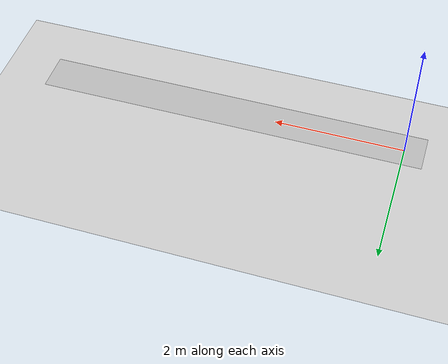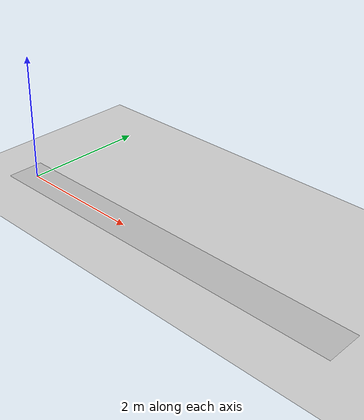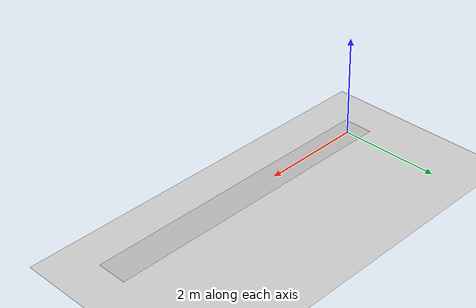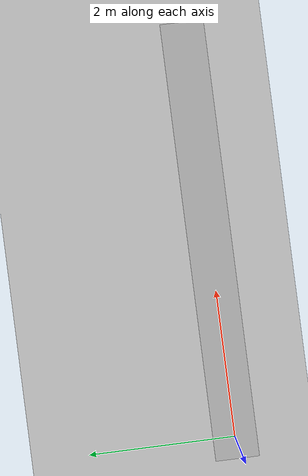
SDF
<sdf version='1.9'>
  <world name='straight_lane'>
    <physics name='1ms' type='ignored'>
      <max_step_size>0.001</max_step_size>
      <real_time_factor>1</real_time_factor>
      <real_time_update_rate>1000</real_time_update_rate>
      <dart>
        <collision_detector>bullet</collision_detector> <!-- this is required to solve https://github.com/gazebosim/gz-sim/issues/880 -->
      </dart>
    </physics>
    <plugin name='gz::sim::systems::Physics' filename='gz-sim-physics-system'/>
    <plugin name='gz::sim::systems::UserCommands' filename='gz-sim-user-commands-system'/>
    <plugin name='gz::sim::systems::SceneBroadcaster' filename='gz-sim-scene-broadcaster-system'/>
    <plugin name='gz::sim::systems::Contact' filename='gz-sim-contact-system'/>
    <gravity>0 0 -9.8</gravity>
    <magnetic_field>6e-06 2.3e-05 -4.2e-05</magnetic_field>
    <atmosphere type='adiabatic'/>
    <scene>
      <ambient>0.4 0.4 0.4 1</ambient>
      <background>0.7 0.7 0.7 1</background>
      <shadows>true</shadows>
      <sky>
        <time>12</time>
        <sunrise>6</sunrise>
        <sunset>18</sunset>
      </sky>
    </scene>
    <model name='ground_plane'>
      <static>true</static>
      <link name='link'>
        <collision name='collision'>
          <geometry>
            <plane>
              <normal>0 0 1</normal>
              <size>100 100</size>
            </plane>
          </geometry>
          <surface>
            <friction>
              <ode/>
            </friction>
            <bounce/>
            <contact/>
          </surface>
        </collision>
        <visual name='visual'>
          <geometry>
            <plane>
              <normal>0 0 1</normal>
              <size>100 100</size>
            </plane>
          </geometry>
          <material>
            <ambient>0.8 0.8 0.8 1</ambient>
            <diffuse>0.8 0.8 0.8 1</diffuse>
            <specular>0.8 0.8 0.8 1</specular>
          </material>
        </visual>
        <pose>0 0 0 0 -0 0</pose>
        <inertial>
          <pose>0 0 0 0 -0 0</pose>
          <mass>1</mass>
          <inertia>
            <ixx>1</ixx>
            <ixy>0</ixy>
            <ixz>0</ixz>
            <iyy>1</iyy>
            <iyz>0</iyz>
            <izz>1</izz>
          </inertia>
        </inertial>
        <enable_wind>false</enable_wind>
      </link>
      <pose>0 0 0 0 -0 0</pose>
      <self_collide>false</self_collide>
    </model>

    <include>
      <name>straight_lane</name>
      <uri>
        package://foxy_gz/assets/straight_lane/straight_lane.sdf
      </uri>
      <pose>2.7 0 0.018 0 0 0</pose>
    </include>

    <light name='sun' type='directional'>
      <pose>0 0 10 0 -0 0</pose>
      <cast_shadows>true</cast_shadows>
      <intensity>1</intensity>
      <direction>-0.5 0.1 -0.9</direction>
      <diffuse>0.8 0.8 0.8 1</diffuse>
      <specular>0.2 0.2 0.2 1</specular>
      <attenuation>
        <range>1000</range>
        <linear>0.01</linear>
        <constant>0.90000000000000002</constant>
        <quadratic>0.001</quadratic>
      </attenuation>
      <spot>
        <inner_angle>0</inner_angle>
        <outer_angle>0</outer_angle>
        <falloff>0</falloff>
      </spot>
    </light>
  </world>
</sdf>

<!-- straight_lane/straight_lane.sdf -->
<sdf version="1.6">
  <model name="straight_lane">
    <static>true</static>
    <link name="link">
      <visual name="visual">
        <geometry>
          <mesh>
            <uri>model://foxy_gz/assets/straight_lane/straight_lane.dae</uri>
          </mesh>
        </geometry>
      </visual>
      <collision name="collision">
        <geometry>
          <box>
            <size>6 0.6 0.018</size>
          </box>
        </geometry>
      </collision>
    </link>
  </model>
</sdf>
